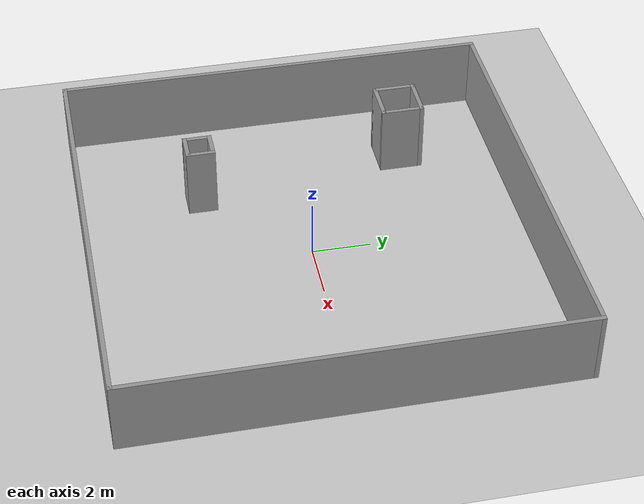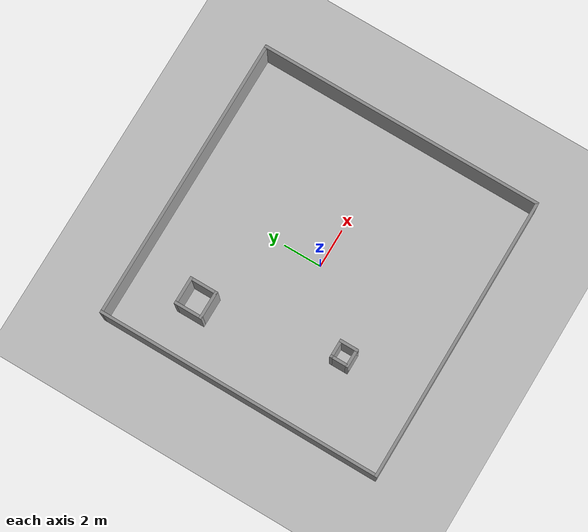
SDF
<?xml version="1.0" ?>
<sdf version="1.7">
  <world name="default">

    <!-- A global light source -->
    <include>
      <uri>model://sun</uri>
    </include>

    <!-- A ground plane -->
    <include>
      <uri>model://ground_plane</uri>
    </include>

    <!-- A camera -->
    <gui fullscreen='0'>
      <camera name='user_camera'>
        <pose>-14.0387 17.1777 16.7825 -0 0.609801 -0.999033</pose>
        <view_controller>orbit</view_controller>
        <projection_type>perspective</projection_type>
      </camera>
    </gui>

    <include>
      <uri>model://wall_outler</uri>
    </include>

    <include>
      <uri>model://pillar1</uri>
    </include>

    <include>
      <uri>model://pillar2</uri>
    </include>

  </world>
</sdf>

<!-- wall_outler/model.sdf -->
<sdf version='1.7'>
  <model name='wall_outler'>
    <pose>0 0 0 0 -0 0</pose>
    <link name='Wall_1'>
      <collision name='Wall_1_Collision'>
        <geometry>
          <box>
            <size>15 0.15 2.5</size>
          </box>
        </geometry>
        <pose>0 0 1.25 0 -0 0</pose>
      </collision>
      <visual name='Wall_1_Visual'>
        <pose>0 0 1.25 0 -0 0</pose>
        <geometry>
          <box>
            <size>15 0.15 2.5</size>
          </box>
        </geometry>
        <material>
          <script>
            <uri>file://media/materials/scripts/gazebo.material</uri>
            <name>Gazebo/Grey</name>
          </script>
          <ambient>1 1 1 1</ambient>
        </material>
        <meta>
          <layer>0</layer>
        </meta>
      </visual>
      <pose>-0 -7.425 0 0 -0 0</pose>
    </link>
    <link name='Wall_2'>
      <collision name='Wall_2_Collision'>
        <geometry>
          <box>
            <size>15 0.15 2.5</size>
          </box>
        </geometry>
        <pose>0 0 1.25 0 -0 0</pose>
      </collision>
      <visual name='Wall_2_Visual'>
        <pose>0 0 1.25 0 -0 0</pose>
        <geometry>
          <box>
            <size>15 0.15 2.5</size>
          </box>
        </geometry>
        <material>
          <script>
            <uri>file://media/materials/scripts/gazebo.material</uri>
            <name>Gazebo/Grey</name>
          </script>
          <ambient>1 1 1 1</ambient>
        </material>
        <meta>
          <layer>0</layer>
        </meta>
      </visual>
      <pose>7.425 -0 0 0 -0 1.5708</pose>
    </link>
    <link name='Wall_3'>
      <collision name='Wall_3_Collision'>
        <geometry>
          <box>
            <size>15 0.15 2.5</size>
          </box>
        </geometry>
        <pose>0 0 1.25 0 -0 0</pose>
      </collision>
      <visual name='Wall_3_Visual'>
        <pose>0 0 1.25 0 -0 0</pose>
        <geometry>
          <box>
            <size>15 0.15 2.5</size>
          </box>
        </geometry>
        <material>
          <script>
            <uri>file://media/materials/scripts/gazebo.material</uri>
            <name>Gazebo/Grey</name>
          </script>
          <ambient>1 1 1 1</ambient>
        </material>
        <meta>
          <layer>0</layer>
        </meta>
      </visual>
      <pose>-0 7.425 0 0 -0 3.14159</pose>
    </link>
    <link name='Wall_4'>
      <collision name='Wall_4_Collision'>
        <geometry>
          <box>
            <size>15 0.15 2.5</size>
          </box>
        </geometry>
        <pose>0 0 1.25 0 -0 0</pose>
      </collision>
      <visual name='Wall_4_Visual'>
        <pose>0 0 1.25 0 -0 0</pose>
        <geometry>
          <box>
            <size>15 0.15 2.5</size>
          </box>
        </geometry>
        <material>
          <script>
            <uri>file://media/materials/scripts/gazebo.material</uri>
            <name>Gazebo/Grey</name>
          </script>
          <ambient>1 1 1 1</ambient>
        </material>
        <meta>
          <layer>0</layer>
        </meta>
      </visual>
      <pose>-7.425 -0 0 0 -0 -1.5708</pose>
    </link>
    <static>1</static>
  </model>
</sdf>

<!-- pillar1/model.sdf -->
<sdf version='1.7'>
  <model name='pillar1'>

    <pose>-3 4 0 0 -0 0</pose>

    <link name='Wall_10'>
      <collision name='Wall_10_Collision'>
        <geometry>
          <box>
            <size>1.5 0.15 2.5</size>
          </box>
        </geometry>
        <pose>0 0 1.25 0 -0 0</pose>
      </collision>
      <visual name='Wall_10_Visual'>
        <pose>0 0 1.25 0 -0 0</pose>
        <geometry>
          <box>
            <size>1.5 0.15 2.5</size>
          </box>
        </geometry>
        <material>
          <script>
            <uri>file://media/materials/scripts/gazebo.material</uri>
            <name>Gazebo/Grey</name>
          </script>
          <ambient>1 1 1 1</ambient>
        </material>
        <meta>
          <layer>0</layer>
        </meta>
      </visual>
      <pose>-1.608 0.675 0 0 -0 3.14159</pose>
    </link>

    <link name='Wall_7'>
      <collision name='Wall_7_Collision'>
        <geometry>
          <box>
            <size>1.5 0.15 2.5</size>
          </box>
        </geometry>
        <pose>0 0 1.25 0 -0 0</pose>
      </collision>
      <visual name='Wall_7_Visual'>
        <pose>0 0 1.25 0 -0 0</pose>
        <geometry>
          <box>
            <size>1.5 0.15 2.5</size>
          </box>
        </geometry>
        <material>
          <script>
            <uri>file://media/materials/scripts/gazebo.material</uri>
            <name>Gazebo/Grey</name>
          </script>
          <ambient>1 1 1 1</ambient>
        </material>
        <meta>
          <layer>0</layer>
        </meta>
      </visual>
      <pose>-2.283 0 0 0 -0 -1.5708</pose>
    </link>

    <link name='Wall_8'>
      <collision name='Wall_8_Collision'>
        <geometry>
          <box>
            <size>1.5 0.15 2.5</size>
          </box>
        </geometry>
        <pose>0 0 1.25 0 -0 0</pose>
      </collision>
      <visual name='Wall_8_Visual'>
        <pose>0 0 1.25 0 -0 0</pose>
        <geometry>
          <box>
            <size>1.5 0.15 2.5</size>
          </box>
        </geometry>
        <material>
          <script>
            <uri>file://media/materials/scripts/gazebo.material</uri>
            <name>Gazebo/Grey</name>
          </script>
          <ambient>1 1 1 1</ambient>
        </material>
        <meta>
          <layer>0</layer>
        </meta>
      </visual>
      <pose>-1.608 -0.675 0 0 -0 0</pose>
    </link>

    <link name='Wall_9'>
      <collision name='Wall_9_Collision'>
        <geometry>
          <box>
            <size>1.5 0.15 2.5</size>
          </box>
        </geometry>
        <pose>0 0 1.25 0 -0 0</pose>
      </collision>
      <visual name='Wall_9_Visual'>
        <pose>0 0 1.25 0 -0 0</pose>
        <geometry>
          <box>
            <size>1.5 0.15 2.5</size>
          </box>
        </geometry>
        <material>
          <script>
            <uri>file://media/materials/scripts/gazebo.material</uri>
            <name>Gazebo/Grey</name>
          </script>
          <ambient>1 1 1 1</ambient>
        </material>
        <meta>
          <layer>0</layer>
        </meta>
      </visual>
      <pose>-0.933002 0 0 0 -0 1.5708</pose>
    </link>

    <static>1</static>

  </model>
</sdf>

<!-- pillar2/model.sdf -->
<sdf version='1.7'>
  <model name='pillar2'>
    <pose>-1.90515 -1.8808 0 0 -0 0</pose>
    <link name='Wall_12'>
      <collision name='Wall_12_Collision'>
        <geometry>
          <box>
            <size>1 0.15 2.5</size>
          </box>
        </geometry>
        <pose>0 0 1.25 0 -0 0</pose>
      </collision>
      <visual name='Wall_12_Visual'>
        <pose>0 0 1.25 0 -0 0</pose>
        <geometry>
          <box>
            <size>1 0.15 2.5</size>
          </box>
        </geometry>
        <material>
          <script>
            <uri>file://media/materials/scripts/gazebo.material</uri>
            <name>Gazebo/Grey</name>
          </script>
          <ambient>1 1 1 1</ambient>
        </material>
        <meta>
          <layer>0</layer>
        </meta>
      </visual>
      <pose>-1.83014 -1.3808 0 0 -0 -1.5708</pose>
    </link>
    <link name='Wall_13'>
      <collision name='Wall_13_Collision'>
        <geometry>
          <box>
            <size>1 0.15 2.5</size>
          </box>
        </geometry>
        <pose>0 0 1.25 0 -0 0</pose>
      </collision>
      <visual name='Wall_13_Visual'>
        <pose>0 0 1.25 0 -0 0</pose>
        <geometry>
          <box>
            <size>1 0.15 2.5</size>
          </box>
        </geometry>
        <material>
          <script>
            <uri>file://media/materials/scripts/gazebo.material</uri>
            <name>Gazebo/Grey</name>
          </script>
          <ambient>1 1 1 1</ambient>
        </material>
        <meta>
          <layer>0</layer>
        </meta>
      </visual>
      <pose>-1.40515 -1.8058 0 0 -0 0</pose>
    </link>
    <link name='Wall_14'>
      <collision name='Wall_14_Collision'>
        <geometry>
          <box>
            <size>1 0.15 2.5</size>
          </box>
        </geometry>
        <pose>0 0 1.25 0 -0 0</pose>
      </collision>
      <visual name='Wall_14_Visual'>
        <pose>0 0 1.25 0 -0 0</pose>
        <geometry>
          <box>
            <size>1 0.15 2.5</size>
          </box>
        </geometry>
        <material>
          <script>
            <uri>file://media/materials/scripts/gazebo.material</uri>
            <name>Gazebo/Grey</name>
          </script>
          <ambient>1 1 1 1</ambient>
        </material>
        <meta>
          <layer>0</layer>
        </meta>
      </visual>
      <pose>-0.980145 -1.3808 0 0 -0 1.5708</pose>
    </link>
    <link name='Wall_15'>
      <collision name='Wall_15_Collision'>
        <geometry>
          <box>
            <size>1 0.15 2.5</size>
          </box>
        </geometry>
        <pose>0 0 1.25 0 -0 0</pose>
      </collision>
      <visual name='Wall_15_Visual'>
        <pose>0 0 1.25 0 -0 0</pose>
        <geometry>
          <box>
            <size>1 0.15 2.5</size>
          </box>
        </geometry>
        <material>
          <script>
            <uri>file://media/materials/scripts/gazebo.material</uri>
            <name>Gazebo/Grey</name>
          </script>
          <ambient>1 1 1 1</ambient>
        </material>
        <meta>
          <layer>0</layer>
        </meta>
      </visual>
      <pose>-1.40515 -0.955801 0 0 -0 3.14159</pose>
    </link>
    <static>1</static>
  </model>
</sdf>
